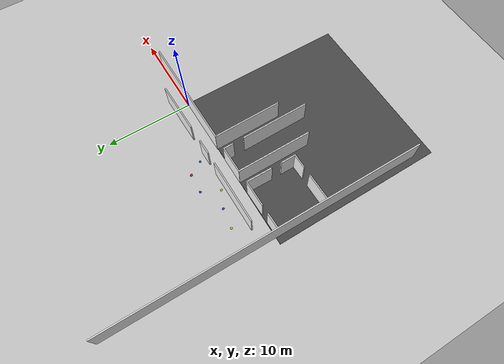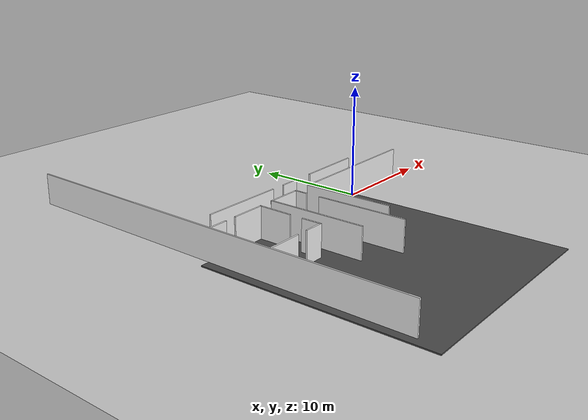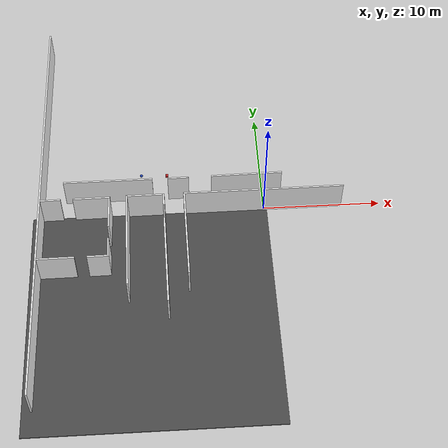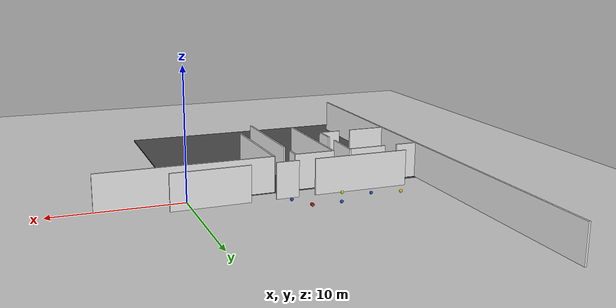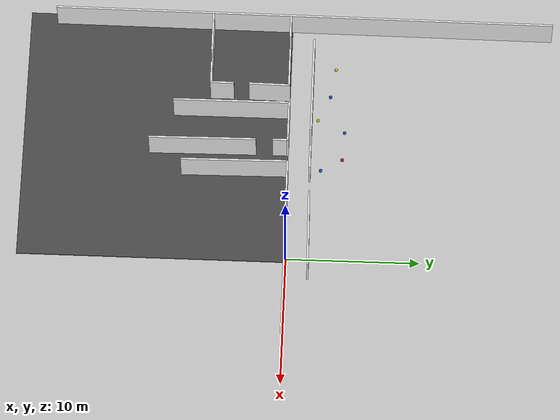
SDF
<sdf version="1.7">
 <world name="default">
  <model name="ground_plane">
   <static>1</static>
   <link name="link">
    <collision name="collision">
     <geometry><plane><normal>0 0 1</normal><size>100 100</size></plane></geometry>
     <surface><friction><ode><mu>100</mu><mu2>50</mu2></ode></friction></surface>
    </collision>
    <visual name="visual">
     <cast_shadows>0</cast_shadows>
     <geometry><plane><normal>0 0 1</normal><size>100 100</size></plane></geometry>
     <material>
      <script><uri>file://media/materials/scripts/gazebo.material</uri><name>Gazebo/Grey</name></script>
     </material>
    </visual>
    <velocity_decay><linear>0</linear><angular>0</angular></velocity_decay>
   </link>
  </model>
  <model name="asphalt_plane">
   <static>1</static>
   <link name="link">
    <collision name="collision"><geometry><box><size>20 20 0.1</size></box></geometry></collision>
    <visual name="visual">
     <cast_shadows>0</cast_shadows>
     <geometry><box><size>20 20 0.1</size></box></geometry>
     <material>
      <script>
       <uri>model://asphalt_plane/materials/scripts</uri>
       <uri>model://asphalt_plane/materials/textures</uri>
       <name>vrc/asphalt</name>
      </script>
     </material>
    </visual>
   </link>
   <pose>-9.73878 -10.1135 0 0 -0 0</pose>
  </model>
  <model name="white_wall_outside_clone_1">
   <link name="link">
    <inertial>
     <mass>1</mass>
     <inertia>
      <ixx>0.166667</ixx>
      <ixy>0</ixy>
      <ixz>0</ixz>
      <iyy>0.166667</iyy>
      <iyz>0</iyz>
      <izz>0.166667</izz>
     </inertia>
    </inertial>
    <visual name="visual">
     <geometry><box><size>37.6355 0.139088 2.78993</size></box></geometry>
     <material>
      <script><name>Gazebo/White</name><uri>file://media/materials/scripts/gazebo.material</uri></script>
      <shader type="vertex"><normal_map>__default__</normal_map></shader>
      <ambient>1 1 1 1</ambient>
      <diffuse>1 1 1 1</diffuse>
      <specular>0 0 0 1</specular>
      <emissive>0 0 0 1</emissive>
     </material>
    </visual>
    <collision name="collision">
     <geometry><box><size>37.6355 0.139088 2.78993</size></box></geometry>
     <surface>
      <friction>
       <ode><mu>1</mu><mu2>1</mu2><fdir1>0 0 0</fdir1><slip1>0</slip1><slip2>0</slip2></ode>
       <torsional>
        <coefficient>1</coefficient>
        <patch_radius>0</patch_radius>
        <surface_radius>0</surface_radius>
        <use_patch_radius>1</use_patch_radius>
        <ode><slip>0</slip></ode>
       </torsional>
      </friction>
      <bounce><restitution_coefficient>0</restitution_coefficient><threshold>1e+06</threshold></bounce>
      <contact>
       <collide_without_contact>0</collide_without_contact>
       <collide_without_contact_bitmask>1</collide_without_contact_bitmask>
       <collide_bitmask>1</collide_bitmask>
       <ode>
        <soft_cfm>0</soft_cfm>
        <soft_erp>0.2</soft_erp>
        <kp>1e+13</kp>
        <kd>1</kd>
        <max_vel>0.01</max_vel>
        <min_depth>0</min_depth>
       </ode>
       <bullet>
        <split_impulse>1</split_impulse>
        <split_impulse_penetration_threshold>-0.01</split_impulse_penetration_threshold>
        <soft_cfm>0</soft_cfm>
        <soft_erp>0.2</soft_erp>
        <kp>1e+13</kp>
        <kd>1</kd>
       </bullet>
      </contact>
     </surface>
    </collision>
   </link>
   <static>1</static>
   <pose>-18.8746 0.750399 1.44009 4e-06 1e-06 1.56558</pose>
  </model>
  <model name="white_wall3_clone_clone_0_clone_clone">
   <link name="link">
    <inertial>
     <mass>1</mass>
     <inertia>
      <ixx>0.166667</ixx>
      <ixy>0</ixy>
      <ixz>0</ixz>
      <iyy>0.166667</iyy>
      <iyz>0</iyz>
      <izz>0.166667</izz>
     </inertia>
    </inertial>
    <visual name="visual">
     <geometry><box><size>1.77743 0.139088 2.78993</size></box></geometry>
     <material>
      <script><name>Gazebo/White</name><uri>file://media/materials/scripts/gazebo.material</uri></script>
      <shader type="vertex"><normal_map>__default__</normal_map></shader>
      <ambient>1 1 1 1</ambient>
      <diffuse>1 1 1 1</diffuse>
      <specular>0 0 0 1</specular>
      <emissive>0 0 0 1</emissive>
     </material>
    </visual>
    <collision name="collision">
     <geometry><box><size>1.77743 0.139088 2.78993</size></box></geometry>
     <surface>
      <friction>
       <ode><mu>1</mu><mu2>1</mu2><fdir1>0 0 0</fdir1><slip1>0</slip1><slip2>0</slip2></ode>
       <torsional>
        <coefficient>1</coefficient>
        <patch_radius>0</patch_radius>
        <surface_radius>0</surface_radius>
        <use_patch_radius>1</use_patch_radius>
        <ode><slip>0</slip></ode>
       </torsional>
      </friction>
      <bounce><restitution_coefficient>0</restitution_coefficient><threshold>1e+06</threshold></bounce>
      <contact>
       <collide_without_contact>0</collide_without_contact>
       <collide_without_contact_bitmask>1</collide_without_contact_bitmask>
       <collide_bitmask>1</collide_bitmask>
       <ode>
        <soft_cfm>0</soft_cfm>
        <soft_erp>0.2</soft_erp>
        <kp>1e+13</kp>
        <kd>1</kd>
        <max_vel>0.01</max_vel>
        <min_depth>0</min_depth>
       </ode>
       <bullet>
        <split_impulse>1</split_impulse>
        <split_impulse_penetration_threshold>-0.01</split_impulse_penetration_threshold>
        <soft_cfm>0</soft_cfm>
        <soft_erp>0.2</soft_erp>
        <kp>1e+13</kp>
        <kd>1</kd>
       </bullet>
      </contact>
     </surface>
    </collision>
   </link>
   <static>1</static>
   <pose>-13.9168 -6.10329 1.43995 -1e-06 4e-06 0.011343</pose>
  </model>
  <model name="white_wall3_clone_clone_0_clone_clone_0">
   <link name="link">
    <inertial>
     <mass>1</mass>
     <inertia>
      <ixx>0.166667</ixx>
      <ixy>0</ixy>
      <ixz>0</ixz>
      <iyy>0.166667</iyy>
      <iyz>0</iyz>
      <izz>0.166667</izz>
     </inertia>
    </inertial>
    <visual name="visual">
     <geometry><box><size>1.77743 0.139088 2.78993</size></box></geometry>
     <material>
      <script><name>Gazebo/White</name><uri>file://media/materials/scripts/gazebo.material</uri></script>
      <shader type="vertex"><normal_map>__default__</normal_map></shader>
      <ambient>1 1 1 1</ambient>
      <diffuse>1 1 1 1</diffuse>
      <specular>0 0 0 1</specular>
      <emissive>0 0 0 1</emissive>
     </material>
    </visual>
    <collision name="collision">
     <geometry><box><size>1.77743 0.139088 2.78993</size></box></geometry>
     <surface>
      <friction>
       <ode><mu>1</mu><mu2>1</mu2><fdir1>0 0 0</fdir1><slip1>0</slip1><slip2>0</slip2></ode>
       <torsional>
        <coefficient>1</coefficient>
        <patch_radius>0</patch_radius>
        <surface_radius>0</surface_radius>
        <use_patch_radius>1</use_patch_radius>
        <ode><slip>0</slip></ode>
       </torsional>
      </friction>
      <bounce><restitution_coefficient>0</restitution_coefficient><threshold>1e+06</threshold></bounce>
      <contact>
       <collide_without_contact>0</collide_without_contact>
       <collide_without_contact_bitmask>1</collide_without_contact_bitmask>
       <collide_bitmask>1</collide_bitmask>
       <ode>
        <soft_cfm>0</soft_cfm>
        <soft_erp>0.2</soft_erp>
        <kp>1e+13</kp>
        <kd>1</kd>
        <max_vel>0.01</max_vel>
        <min_depth>0</min_depth>
       </ode>
       <bullet>
        <split_impulse>1</split_impulse>
        <split_impulse_penetration_threshold>-0.01</split_impulse_penetration_threshold>
        <soft_cfm>0</soft_cfm>
        <soft_erp>0.2</soft_erp>
        <kp>1e+13</kp>
        <kd>1</kd>
       </bullet>
      </contact>
     </surface>
    </collision>
   </link>
   <static>1</static>
   <pose>-13.1027 -5.25978 1.43995 4e-06 1e-06 1.57847</pose>
  </model>
  <model name="white_wall16_clone">
   <link name="link">
    <inertial>
     <mass>1</mass>
     <inertia>
      <ixx>0.166667</ixx>
      <ixy>0</ixy>
      <ixz>0</ixz>
      <iyy>0.166667</iyy>
      <iyz>0</iyz>
      <izz>0.166667</izz>
     </inertia>
    </inertial>
    <visual name="visual">
     <geometry><box><size>3.08239 0.139088 2.78993</size></box></geometry>
     <material>
      <script><name>Gazebo/White</name><uri>file://media/materials/scripts/gazebo.material</uri></script>
      <shader type="vertex"><normal_map>__default__</normal_map></shader>
      <ambient>1 1 1 1</ambient>
      <diffuse>1 1 1 1</diffuse>
      <specular>0 0 0 1</specular>
      <emissive>0 0 0 1</emissive>
     </material>
    </visual>
    <collision name="collision">
     <geometry><box><size>3.08239 0.139088 2.78993</size></box></geometry>
     <surface>
      <friction>
       <ode><mu>1</mu><mu2>1</mu2><fdir1>0 0 0</fdir1><slip1>0</slip1><slip2>0</slip2></ode>
       <torsional>
        <coefficient>1</coefficient>
        <patch_radius>0</patch_radius>
        <surface_radius>0</surface_radius>
        <use_patch_radius>1</use_patch_radius>
        <ode><slip>0</slip></ode>
       </torsional>
      </friction>
      <bounce><restitution_coefficient>0</restitution_coefficient><threshold>1e+06</threshold></bounce>
      <contact>
       <collide_without_contact>0</collide_without_contact>
       <collide_without_contact_bitmask>1</collide_without_contact_bitmask>
       <collide_bitmask>1</collide_bitmask>
       <ode>
        <soft_cfm>0</soft_cfm>
        <soft_erp>0.2</soft_erp>
        <kp>1e+13</kp>
        <kd>1</kd>
        <max_vel>0.01</max_vel>
        <min_depth>0</min_depth>
       </ode>
       <bullet>
        <split_impulse>1</split_impulse>
        <split_impulse_penetration_threshold>-0.01</split_impulse_penetration_threshold>
        <soft_cfm>0</soft_cfm>
        <soft_erp>0.2</soft_erp>
        <kp>1e+13</kp>
        <kd>1</kd>
       </bullet>
      </contact>
     </surface>
    </collision>
   </link>
   <static>1</static>
   <pose>-17.3414 -6.13134 1.43999 1e-06 -4e-06 -3.13575</pose>
  </model>
  <model name="white_wall16_clone_clone">
   <link name="link">
    <inertial>
     <mass>1</mass>
     <inertia>
      <ixx>0.166667</ixx>
      <ixy>0</ixy>
      <ixz>0</ixz>
      <iyy>0.166667</iyy>
      <iyz>0</iyz>
      <izz>0.166667</izz>
     </inertia>
    </inertial>
    <visual name="visual">
     <geometry><box><size>3.08239 0.139088 2.78993</size></box></geometry>
     <material>
      <script><name>Gazebo/White</name><uri>file://media/materials/scripts/gazebo.material</uri></script>
      <shader type="vertex"><normal_map>__default__</normal_map></shader>
      <ambient>1 1 1 1</ambient>
      <diffuse>1 1 1 1</diffuse>
      <specular>0 0 0 1</specular>
      <emissive>0 0 0 1</emissive>
     </material>
    </visual>
    <collision name="collision">
     <geometry><box><size>3.08239 0.139088 2.78993</size></box></geometry>
     <surface>
      <friction>
       <ode><mu>1</mu><mu2>1</mu2><fdir1>0 0 0</fdir1><slip1>0</slip1><slip2>0</slip2></ode>
       <torsional>
        <coefficient>1</coefficient>
        <patch_radius>0</patch_radius>
        <surface_radius>0</surface_radius>
        <use_patch_radius>1</use_patch_radius>
        <ode><slip>0</slip></ode>
       </torsional>
      </friction>
      <bounce><restitution_coefficient>0</restitution_coefficient><threshold>1e+06</threshold></bounce>
      <contact>
       <collide_without_contact>0</collide_without_contact>
       <collide_without_contact_bitmask>1</collide_without_contact_bitmask>
       <collide_bitmask>1</collide_bitmask>
       <ode>
        <soft_cfm>0</soft_cfm>
        <soft_erp>0.2</soft_erp>
        <kp>1e+13</kp>
        <kd>1</kd>
        <max_vel>0.01</max_vel>
        <min_depth>0</min_depth>
       </ode>
       <bullet>
        <split_impulse>1</split_impulse>
        <split_impulse_penetration_threshold>-0.01</split_impulse_penetration_threshold>
        <soft_cfm>0</soft_cfm>
        <soft_erp>0.2</soft_erp>
        <kp>1e+13</kp>
        <kd>1</kd>
       </bullet>
      </contact>
     </surface>
    </collision>
   </link>
   <static>1</static>
   <pose>-13.0778 -1.67577 1.43998 4e-06 1e-06 1.55719</pose>
  </model>
  <model name="white_wall16_clone_clone_0">
   <link name="link">
    <inertial>
     <mass>1</mass>
     <inertia>
      <ixx>0.166667</ixx>
      <ixy>0</ixy>
      <ixz>0</ixz>
      <iyy>0.166667</iyy>
      <iyz>0</iyz>
      <izz>0.166667</izz>
     </inertia>
    </inertial>
    <visual name="visual">
     <geometry><box><size>3.08239 0.139088 2.78993</size></box></geometry>
     <material>
      <script><name>Gazebo/White</name><uri>file://media/materials/scripts/gazebo.material</uri></script>
      <shader type="vertex"><normal_map>__default__</normal_map></shader>
      <ambient>1 1 1 1</ambient>
      <diffuse>1 1 1 1</diffuse>
      <specular>0 0 0 1</specular>
      <emissive>0 0 0 1</emissive>
     </material>
    </visual>
    <collision name="collision">
     <geometry><box><size>3.08239 0.139088 2.78993</size></box></geometry>
     <surface>
      <friction>
       <ode><mu>1</mu><mu2>1</mu2><fdir1>0 0 0</fdir1><slip1>0</slip1><slip2>0</slip2></ode>
       <torsional>
        <coefficient>1</coefficient>
        <patch_radius>0</patch_radius>
        <surface_radius>0</surface_radius>
        <use_patch_radius>1</use_patch_radius>
        <ode><slip>0</slip></ode>
       </torsional>
      </friction>
      <bounce><restitution_coefficient>0</restitution_coefficient><threshold>1e+06</threshold></bounce>
      <contact>
       <collide_without_contact>0</collide_without_contact>
       <collide_without_contact_bitmask>1</collide_without_contact_bitmask>
       <collide_bitmask>1</collide_bitmask>
       <ode>
        <soft_cfm>0</soft_cfm>
        <soft_erp>0.2</soft_erp>
        <kp>1e+13</kp>
        <kd>1</kd>
        <max_vel>0.01</max_vel>
        <min_depth>0</min_depth>
       </ode>
       <bullet>
        <split_impulse>1</split_impulse>
        <split_impulse_penetration_threshold>-0.01</split_impulse_penetration_threshold>
        <soft_cfm>0</soft_cfm>
        <soft_erp>0.2</soft_erp>
        <kp>1e+13</kp>
        <kd>1</kd>
       </bullet>
      </contact>
     </surface>
    </collision>
   </link>
   <static>1</static>
   <pose>-14.5522 -0.222761 1.43999 1e-06 -4e-06 -3.13575</pose>
  </model>
  <model name="white_wall3_clone_clone_0_clone_clone_clone">
   <link name="link">
    <inertial>
     <mass>1</mass>
     <inertia>
      <ixx>0.166667</ixx>
      <ixy>0</ixy>
      <ixz>0</ixz>
      <iyy>0.166667</iyy>
      <iyz>0</iyz>
      <izz>0.166667</izz>
     </inertia>
    </inertial>
    <visual name="visual">
     <geometry><box><size>1.77743 0.139088 2.78993</size></box></geometry>
     <material>
      <script><name>Gazebo/White</name><uri>file://media/materials/scripts/gazebo.material</uri></script>
      <shader type="vertex"><normal_map>__default__</normal_map></shader>
      <ambient>1 1 1 1</ambient>
      <diffuse>1 1 1 1</diffuse>
      <specular>0 0 0 1</specular>
      <emissive>0 0 0 1</emissive>
     </material>
    </visual>
    <collision name="collision">
     <geometry><box><size>1.77743 0.139088 2.78993</size></box></geometry>
     <surface>
      <friction>
       <ode><mu>1</mu><mu2>1</mu2><fdir1>0 0 0</fdir1><slip1>0</slip1><slip2>0</slip2></ode>
       <torsional>
        <coefficient>1</coefficient>
        <patch_radius>0</patch_radius>
        <surface_radius>0</surface_radius>
        <use_patch_radius>1</use_patch_radius>
        <ode><slip>0</slip></ode>
       </torsional>
      </friction>
      <bounce><restitution_coefficient>0</restitution_coefficient><threshold>1e+06</threshold></bounce>
      <contact>
       <collide_without_contact>0</collide_without_contact>
       <collide_without_contact_bitmask>1</collide_without_contact_bitmask>
       <collide_bitmask>1</collide_bitmask>
       <ode>
        <soft_cfm>0</soft_cfm>
        <soft_erp>0.2</soft_erp>
        <kp>1e+13</kp>
        <kd>1</kd>
        <max_vel>0.01</max_vel>
        <min_depth>0</min_depth>
       </ode>
       <bullet>
        <split_impulse>1</split_impulse>
        <split_impulse_penetration_threshold>-0.01</split_impulse_penetration_threshold>
        <soft_cfm>0</soft_cfm>
        <soft_erp>0.2</soft_erp>
        <kp>1e+13</kp>
        <kd>1</kd>
       </bullet>
      </contact>
     </surface>
    </collision>
   </link>
   <static>1</static>
   <pose>-17.9987 -0.256602 1.43995 -1e-06 4e-06 0.011343</pose>
  </model>
  <model name="white_wall1_clone_0">
   <link name="link">
    <inertial>
     <mass>1</mass>
     <inertia>
      <ixx>0.166667</ixx>
      <ixy>0</ixy>
      <ixz>0</ixz>
      <iyy>0.166667</iyy>
      <iyz>0</iyz>
      <izz>0.166667</izz>
     </inertia>
    </inertial>
    <visual name="visual">
     <geometry><box><size>7.516 0.139088 2.78993</size></box></geometry>
     <material>
      <script><name>Gazebo/White</name><uri>file://media/materials/scripts/gazebo.material</uri></script>
      <shader type="vertex"><normal_map>__default__</normal_map></shader>
      <ambient>1 1 1 1</ambient>
      <diffuse>1 1 1 1</diffuse>
      <specular>0 0 0 1</specular>
      <emissive>0 0 0 1</emissive>
     </material>
    </visual>
    <collision name="collision">
     <geometry><box><size>7.516 0.139088 2.78993</size></box></geometry>
     <surface>
      <friction>
       <ode><mu>1</mu><mu2>1</mu2><fdir1>0 0 0</fdir1><slip1>0</slip1><slip2>0</slip2></ode>
       <torsional>
        <coefficient>1</coefficient>
        <patch_radius>0</patch_radius>
        <surface_radius>0</surface_radius>
        <use_patch_radius>1</use_patch_radius>
        <ode><slip>0</slip></ode>
       </torsional>
      </friction>
      <bounce><restitution_coefficient>0</restitution_coefficient><threshold>1e+06</threshold></bounce>
      <contact>
       <collide_without_contact>0</collide_without_contact>
       <collide_without_contact_bitmask>1</collide_without_contact_bitmask>
       <collide_bitmask>1</collide_bitmask>
       <ode>
        <soft_cfm>0</soft_cfm>
        <soft_erp>0.2</soft_erp>
        <kp>1e+13</kp>
        <kd>1</kd>
        <max_vel>0.01</max_vel>
        <min_depth>0</min_depth>
       </ode>
       <bullet>
        <split_impulse>1</split_impulse>
        <split_impulse_penetration_threshold>-0.01</split_impulse_penetration_threshold>
        <soft_cfm>0</soft_cfm>
        <soft_erp>0.2</soft_erp>
        <kp>1e+13</kp>
        <kd>1</kd>
       </bullet>
      </contact>
     </surface>
    </collision>
   </link>
   <static>1</static>
   <pose>-13.1864 1.55896 1.43996 -1e-06 4e-06 -1.6e-05</pose>
  </model>
  <model name="white_wall3_clone_clone_0_clone_clone_clone_0">
   <link name="link">
    <inertial>
     <mass>1</mass>
     <inertia>
      <ixx>0.166667</ixx>
      <ixy>0</ixy>
      <ixz>0</ixz>
      <iyy>0.166667</iyy>
      <iyz>0</iyz>
      <izz>0.166667</izz>
     </inertia>
    </inertial>
    <visual name="visual">
     <geometry><box><size>1.77743 0.139088 2.78993</size></box></geometry>
     <material>
      <script><name>Gazebo/White</name><uri>file://media/materials/scripts/gazebo.material</uri></script>
      <shader type="vertex"><normal_map>__default__</normal_map></shader>
      <ambient>1 1 1 1</ambient>
      <diffuse>1 1 1 1</diffuse>
      <specular>0 0 0 1</specular>
      <emissive>0 0 0 1</emissive>
     </material>
    </visual>
    <collision name="collision">
     <geometry><box><size>1.77743 0.139088 2.78993</size></box></geometry>
     <surface>
      <friction>
       <ode><mu>1</mu><mu2>1</mu2><fdir1>0 0 0</fdir1><slip1>0</slip1><slip2>0</slip2></ode>
       <torsional>
        <coefficient>1</coefficient>
        <patch_radius>0</patch_radius>
        <surface_radius>0</surface_radius>
        <use_patch_radius>1</use_patch_radius>
        <ode><slip>0</slip></ode>
       </torsional>
      </friction>
      <bounce><restitution_coefficient>0</restitution_coefficient><threshold>1e+06</threshold></bounce>
      <contact>
       <collide_without_contact>0</collide_without_contact>
       <collide_without_contact_bitmask>1</collide_without_contact_bitmask>
       <collide_bitmask>1</collide_bitmask>
       <ode>
        <soft_cfm>0</soft_cfm>
        <soft_erp>0.2</soft_erp>
        <kp>1e+13</kp>
        <kd>1</kd>
        <max_vel>0.01</max_vel>
        <min_depth>0</min_depth>
       </ode>
       <bullet>
        <split_impulse>1</split_impulse>
        <split_impulse_penetration_threshold>-0.01</split_impulse_penetration_threshold>
        <soft_cfm>0</soft_cfm>
        <soft_erp>0.2</soft_erp>
        <kp>1e+13</kp>
        <kd>1</kd>
       </bullet>
      </contact>
     </surface>
    </collision>
   </link>
   <static>1</static>
   <pose>-7.23801 1.56339 1.43995 -1e-06 4e-06 0.011343</pose>
  </model>
  <model name="white_wall2_clone_clone_clone_clone_clone_clone">
   <link name="link">
    <inertial>
     <mass>1</mass>
     <inertia>
      <ixx>0.166667</ixx>
      <ixy>0</ixy>
      <ixz>0</ixz>
      <iyy>0.166667</iyy>
      <iyz>0</iyz>
      <izz>0.166667</izz>
     </inertia>
    </inertial>
    <visual name="visual">
     <geometry><box><size>3.22688 0.139088 2.78993</size></box></geometry>
     <material>
      <script><name>Gazebo/White</name><uri>file://media/materials/scripts/gazebo.material</uri></script>
      <shader type="vertex"><normal_map>__default__</normal_map></shader>
      <ambient>1 1 1 1</ambient>
      <diffuse>1 1 1 1</diffuse>
      <specular>0 0 0 1</specular>
      <emissive>0 0 0 1</emissive>
     </material>
    </visual>
    <collision name="collision">
     <geometry><box><size>3.22688 0.139088 2.78993</size></box></geometry>
     <surface>
      <friction>
       <ode><mu>1</mu><mu2>1</mu2><fdir1>0 0 0</fdir1><slip1>0</slip1><slip2>0</slip2></ode>
       <torsional>
        <coefficient>1</coefficient>
        <patch_radius>0</patch_radius>
        <surface_radius>0</surface_radius>
        <use_patch_radius>1</use_patch_radius>
        <ode><slip>0</slip></ode>
       </torsional>
      </friction>
      <bounce><restitution_coefficient>0</restitution_coefficient><threshold>1e+06</threshold></bounce>
      <contact>
       <collide_without_contact>0</collide_without_contact>
       <collide_without_contact_bitmask>1</collide_without_contact_bitmask>
       <collide_bitmask>1</collide_bitmask>
       <ode>
        <soft_cfm>0</soft_cfm>
        <soft_erp>0.2</soft_erp>
        <kp>1e+13</kp>
        <kd>1</kd>
        <max_vel>0.01</max_vel>
        <min_depth>0</min_depth>
       </ode>
       <bullet>
        <split_impulse>1</split_impulse>
        <split_impulse_penetration_threshold>-0.01</split_impulse_penetration_threshold>
        <soft_cfm>0</soft_cfm>
        <soft_erp>0.2</soft_erp>
        <kp>1e+13</kp>
        <kd>1</kd>
       </bullet>
      </contact>
     </surface>
    </collision>
   </link>
   <static>1</static>
   <pose>-10.0611 -0.145428 1.43995 -1e-06 4e-06 0.004652</pose>
  </model>
  <model name="white_wall3_clone_clone_0_clone_clone_0_clone_clone">
   <link name="link">
    <inertial>
     <mass>1</mass>
     <inertia>
      <ixx>0.166667</ixx>
      <ixy>0</ixy>
      <ixz>0</ixz>
      <iyy>0.166667</iyy>
      <iyz>0</iyz>
      <izz>0.166667</izz>
     </inertia>
    </inertial>
    <visual name="visual">
     <geometry><box><size>1.18951 0.139088 2.78993</size></box></geometry>
     <material>
      <script><name>Gazebo/White</name><uri>file://media/materials/scripts/gazebo.material</uri></script>
      <shader type="vertex"><normal_map>__default__</normal_map></shader>
      <ambient>1 1 1 1</ambient>
      <diffuse>1 1 1 1</diffuse>
      <specular>0 0 0 1</specular>
      <emissive>0 0 0 1</emissive>
     </material>
    </visual>
    <collision name="collision">
     <geometry><box><size>1.18951 0.139088 2.78993</size></box></geometry>
     <surface>
      <friction>
       <ode><mu>1</mu><mu2>1</mu2><fdir1>0 0 0</fdir1><slip1>0</slip1><slip2>0</slip2></ode>
       <torsional>
        <coefficient>1</coefficient>
        <patch_radius>0</patch_radius>
        <surface_radius>0</surface_radius>
        <use_patch_radius>1</use_patch_radius>
        <ode><slip>0</slip></ode>
       </torsional>
      </friction>
      <bounce><restitution_coefficient>0</restitution_coefficient><threshold>1e+06</threshold></bounce>
      <contact>
       <collide_without_contact>0</collide_without_contact>
       <collide_without_contact_bitmask>1</collide_without_contact_bitmask>
       <collide_bitmask>1</collide_bitmask>
       <ode>
        <soft_cfm>0</soft_cfm>
        <soft_erp>0.2</soft_erp>
        <kp>1e+13</kp>
        <kd>1</kd>
        <max_vel>0.01</max_vel>
        <min_depth>0</min_depth>
       </ode>
       <bullet>
        <split_impulse>1</split_impulse>
        <split_impulse_penetration_threshold>-0.01</split_impulse_penetration_threshold>
        <soft_cfm>0</soft_cfm>
        <soft_erp>0.2</soft_erp>
        <kp>1e+13</kp>
        <kd>1</kd>
       </bullet>
      </contact>
     </surface>
    </collision>
   </link>
   <static>1</static>
   <pose>-8.51624 -0.669009 1.43995 4e-06 1e-06 1.57847</pose>
  </model>
  <model name="white_wall20">
   <link name="link">
    <inertial>
     <mass>1</mass>
     <inertia>
      <ixx>0.166667</ixx>
      <ixy>0</ixy>
      <ixz>0</ixz>
      <iyy>0.166667</iyy>
      <iyz>0</iyz>
      <izz>0.166667</izz>
     </inertia>
    </inertial>
    <visual name="visual">
     <geometry><box><size>8.05225 0.139088 2.78993</size></box></geometry>
     <material>
      <script><name>Gazebo/White</name><uri>file://media/materials/scripts/gazebo.material</uri></script>
      <shader type="vertex"><normal_map>__default__</normal_map></shader>
      <ambient>1 1 1 1</ambient>
      <diffuse>1 1 1 1</diffuse>
      <specular>0 0 0 1</specular>
      <emissive>0 0 0 1</emissive>
     </material>
    </visual>
    <collision name="collision">
     <geometry><box><size>8.05225 0.139088 2.78993</size></box></geometry>
     <surface>
      <friction>
       <ode><mu>1</mu><mu2>1</mu2><fdir1>0 0 0</fdir1><slip1>0</slip1><slip2>0</slip2></ode>
       <torsional>
        <coefficient>1</coefficient>
        <patch_radius>0</patch_radius>
        <surface_radius>0</surface_radius>
        <use_patch_radius>1</use_patch_radius>
        <ode><slip>0</slip></ode>
       </torsional>
      </friction>
      <bounce><restitution_coefficient>0</restitution_coefficient><threshold>1e+06</threshold></bounce>
      <contact>
       <collide_without_contact>0</collide_without_contact>
       <collide_without_contact_bitmask>1</collide_without_contact_bitmask>
       <collide_bitmask>1</collide_bitmask>
       <ode>
        <soft_cfm>0</soft_cfm>
        <soft_erp>0.2</soft_erp>
        <kp>1e+13</kp>
        <kd>1</kd>
        <max_vel>0.01</max_vel>
        <min_depth>0</min_depth>
       </ode>
       <bullet>
        <split_impulse>1</split_impulse>
        <split_impulse_penetration_threshold>-0.01</split_impulse_penetration_threshold>
        <soft_cfm>0</soft_cfm>
        <soft_erp>0.2</soft_erp>
        <kp>1e+13</kp>
        <kd>1</kd>
       </bullet>
      </contact>
     </surface>
    </collision>
   </link>
   <static>1</static>
   <pose>-8.45525 -6.55408 1.43995 4e-06 1e-06 1.58267</pose>
  </model>
  <model name="white_wall6_clone_clone_clone_0_clone">
   <link name="link">
    <inertial>
     <mass>1</mass>
     <inertia>
      <ixx>0.166667</ixx>
      <ixy>0</ixy>
      <ixz>0</ixz>
      <iyy>0.166667</iyy>
      <iyz>0</iyz>
      <izz>0.166667</izz>
     </inertia>
    </inertial>
    <visual name="visual">
     <geometry><box><size>6.01508 0.139088 2.78993</size></box></geometry>
     <material>
      <script><name>Gazebo/White</name><uri>file://media/materials/scripts/gazebo.material</uri></script>
      <shader type="vertex"><normal_map>__default__</normal_map></shader>
      <ambient>1 1 1 1</ambient>
      <diffuse>1 1 1 1</diffuse>
      <specular>0 0 0 1</specular>
      <emissive>0 0 0 1</emissive>
     </material>
    </visual>
    <collision name="collision">
     <geometry><box><size>6.01508 0.139088 2.78993</size></box></geometry>
     <surface>
      <friction>
       <ode><mu>1</mu><mu2>1</mu2><fdir1>0 0 0</fdir1><slip1>0</slip1><slip2>0</slip2></ode>
       <torsional>
        <coefficient>1</coefficient>
        <patch_radius>0</patch_radius>
        <surface_radius>0</surface_radius>
        <use_patch_radius>1</use_patch_radius>
        <ode><slip>0</slip></ode>
       </torsional>
      </friction>
      <bounce><restitution_coefficient>0</restitution_coefficient><threshold>1e+06</threshold></bounce>
      <contact>
       <collide_without_contact>0</collide_without_contact>
       <collide_without_contact_bitmask>1</collide_without_contact_bitmask>
       <collide_bitmask>1</collide_bitmask>
       <ode>
        <soft_cfm>0</soft_cfm>
        <soft_erp>0.2</soft_erp>
        <kp>1e+13</kp>
        <kd>1</kd>
        <max_vel>0.01</max_vel>
        <min_depth>0</min_depth>
       </ode>
       <bullet>
        <split_impulse>1</split_impulse>
        <split_impulse_penetration_threshold>-0.01</split_impulse_penetration_threshold>
        <soft_cfm>0</soft_cfm>
        <soft_erp>0.2</soft_erp>
        <kp>1e+13</kp>
        <kd>1</kd>
       </bullet>
      </contact>
     </surface>
    </collision>
   </link>
   <static>1</static>
   <pose>-1.41153 1.6483 1.43998 1e-06 -4e-06 -3.1252</pose>
  </model>
  <model name="white_wall20_clone">
   <link name="link">
    <inertial>
     <mass>1</mass>
     <inertia>
      <ixx>0.166667</ixx>
      <ixy>0</ixy>
      <ixz>0</ixz>
      <iyy>0.166667</iyy>
      <iyz>0</iyz>
      <izz>0.166667</izz>
     </inertia>
    </inertial>
    <visual name="visual">
     <geometry><box><size>8.05225 0.139088 2.78993</size></box></geometry>
     <material>
      <script><name>Gazebo/White</name><uri>file://media/materials/scripts/gazebo.material</uri></script>
      <shader type="vertex"><normal_map>__default__</normal_map></shader>
      <ambient>1 1 1 1</ambient>
      <diffuse>1 1 1 1</diffuse>
      <specular>0 0 0 1</specular>
      <emissive>0 0 0 1</emissive>
     </material>
    </visual>
    <collision name="collision">
     <geometry><box><size>8.05225 0.139088 2.78993</size></box></geometry>
     <surface>
      <friction>
       <ode><mu>1</mu><mu2>1</mu2><fdir1>0 0 0</fdir1><slip1>0</slip1><slip2>0</slip2></ode>
       <torsional>
        <coefficient>1</coefficient>
        <patch_radius>0</patch_radius>
        <surface_radius>0</surface_radius>
        <use_patch_radius>1</use_patch_radius>
        <ode><slip>0</slip></ode>
       </torsional>
      </friction>
      <bounce><restitution_coefficient>0</restitution_coefficient><threshold>1e+06</threshold></bounce>
      <contact>
       <collide_without_contact>0</collide_without_contact>
       <collide_without_contact_bitmask>1</collide_without_contact_bitmask>
       <collide_bitmask>1</collide_bitmask>
       <ode>
        <soft_cfm>0</soft_cfm>
        <soft_erp>0.2</soft_erp>
        <kp>1e+13</kp>
        <kd>1</kd>
        <max_vel>0.01</max_vel>
        <min_depth>0</min_depth>
       </ode>
       <bullet>
        <split_impulse>1</split_impulse>
        <split_impulse_penetration_threshold>-0.01</split_impulse_penetration_threshold>
        <soft_cfm>0</soft_cfm>
        <soft_erp>0.2</soft_erp>
        <kp>1e+13</kp>
        <kd>1</kd>
       </bullet>
      </contact>
     </surface>
    </collision>
   </link>
   <static>1</static>
   <pose>-6.73509 -4.06271 1.43995 4e-06 1e-06 1.58267</pose>
  </model>
  <model name="white_wall23">
   <link name="link">
    <inertial>
     <mass>1</mass>
     <inertia>
      <ixx>0.166667</ixx>
      <ixy>0</ixy>
      <ixz>0</ixz>
      <iyy>0.166667</iyy>
      <iyz>0</iyz>
      <izz>0.166667</izz>
     </inertia>
    </inertial>
    <visual name="visual">
     <geometry><box><size>13.4701 0.139088 2.78993</size></box></geometry>
     <material>
      <script><name>Gazebo/White</name><uri>file://media/materials/scripts/gazebo.material</uri></script>
      <shader type="vertex"><normal_map>__default__</normal_map></shader>
      <ambient>1 1 1 1</ambient>
      <diffuse>1 1 1 1</diffuse>
      <specular>0 0 0 1</specular>
      <emissive>0 0 0 1</emissive>
     </material>
    </visual>
    <collision name="collision">
     <geometry><box><size>13.4701 0.139088 2.78993</size></box></geometry>
     <surface>
      <friction>
       <ode><mu>1</mu><mu2>1</mu2><fdir1>0 0 0</fdir1><slip1>0</slip1><slip2>0</slip2></ode>
       <torsional>
        <coefficient>1</coefficient>
        <patch_radius>0</patch_radius>
        <surface_radius>0</surface_radius>
        <use_patch_radius>1</use_patch_radius>
        <ode><slip>0</slip></ode>
       </torsional>
      </friction>
      <bounce><restitution_coefficient>0</restitution_coefficient><threshold>1e+06</threshold></bounce>
      <contact>
       <collide_without_contact>0</collide_without_contact>
       <collide_without_contact_bitmask>1</collide_without_contact_bitmask>
       <collide_bitmask>1</collide_bitmask>
       <ode>
        <soft_cfm>0</soft_cfm>
        <soft_erp>0.2</soft_erp>
        <kp>1e+13</kp>
        <kd>1</kd>
        <max_vel>0.01</max_vel>
        <min_depth>0</min_depth>
       </ode>
       <bullet>
        <split_impulse>1</split_impulse>
        <split_impulse_penetration_threshold>-0.01</split_impulse_penetration_threshold>
        <soft_cfm>0</soft_cfm>
        <soft_erp>0.2</soft_erp>
        <kp>1e+13</kp>
        <kd>1</kd>
       </bullet>
      </contact>
     </surface>
    </collision>
   </link>
   <static>1</static>
   <pose>-0.069027 -0.072082 1.43998 1e-06 -4e-06 -3.13691</pose>
  </model>
  <model name="white_wall29">
   <link name="link">
    <inertial>
     <mass>1</mass>
     <inertia>
      <ixx>0.166667</ixx>
      <ixy>0</ixy>
      <ixz>0</ixz>
      <iyy>0.166667</iyy>
      <iyz>0</iyz>
      <izz>0.166667</izz>
     </inertia>
    </inertial>
    <visual name="visual">
     <geometry><box><size>8.77073 0.139088 2.78993</size></box></geometry>
     <material>
      <script><name>Gazebo/White</name><uri>file://media/materials/scripts/gazebo.material</uri></script>
      <shader type="vertex"><normal_map>__default__</normal_map></shader>
      <ambient>1 1 1 1</ambient>
      <diffuse>1 1 1 1</diffuse>
      <specular>0 0 0 1</specular>
      <emissive>0 0 0 1</emissive>
     </material>
    </visual>
    <collision name="collision">
     <geometry><box><size>8.77073 0.139088 2.78993</size></box></geometry>
     <surface>
      <friction>
       <ode><mu>1</mu><mu2>1</mu2><fdir1>0 0 0</fdir1><slip1>0</slip1><slip2>0</slip2></ode>
       <torsional>
        <coefficient>1</coefficient>
        <patch_radius>0</patch_radius>
        <surface_radius>0</surface_radius>
        <use_patch_radius>1</use_patch_radius>
        <ode><slip>0</slip></ode>
       </torsional>
      </friction>
      <bounce><restitution_coefficient>0</restitution_coefficient><threshold>1e+06</threshold></bounce>
      <contact>
       <collide_without_contact>0</collide_without_contact>
       <collide_without_contact_bitmask>1</collide_without_contact_bitmask>
       <collide_bitmask>1</collide_bitmask>
       <ode>
        <soft_cfm>0</soft_cfm>
        <soft_erp>0.2</soft_erp>
        <kp>1e+13</kp>
        <kd>1</kd>
        <max_vel>0.01</max_vel>
        <min_depth>0</min_depth>
       </ode>
       <bullet>
        <split_impulse>1</split_impulse>
        <split_impulse_penetration_threshold>-0.01</split_impulse_penetration_threshold>
        <soft_cfm>0</soft_cfm>
        <soft_erp>0.2</soft_erp>
        <kp>1e+13</kp>
        <kd>1</kd>
       </bullet>
      </contact>
     </surface>
    </collision>
   </link>
   <static>1</static>
   <pose>-11.5983 -4.4805 1.43998 4e-06 1e-06 1.57381</pose>
  </model>
  <model name="unit_sphere_blue_small_clone">
   <link name="link">
    <inertial>
     <mass>1</mass>
     <inertia><ixx>0.1</ixx><ixy>0</ixy><ixz>0</ixz><iyy>0.1</iyy><iyz>0</iyz><izz>0.1</izz></inertia>
    </inertial>
    <pose>0 0 -0.418168 0 -0 0</pose>
    <visual name="visual">
     <geometry><sphere><radius>0.125</radius></sphere></geometry>
     <material>
      <script><name>Gazebo/Blue</name><uri>file://media/materials/scripts/gazebo.material</uri></script>
      <shader type="vertex"><normal_map>__default__</normal_map></shader>
      <ambient>0 0 1 1</ambient>
      <diffuse>0 0 1 1</diffuse>
      <specular>0.1 0.1 0.1 1</specular>
      <emissive>0 0 0 1</emissive>
     </material>
    </visual>
    <collision name="collision">
     <geometry><sphere><radius>0.125</radius></sphere></geometry>
     <surface>
      <friction>
       <ode><mu>1</mu><mu2>1</mu2><fdir1>0 0 0</fdir1><slip1>0</slip1><slip2>0</slip2></ode>
       <torsional>
        <coefficient>1</coefficient>
        <patch_radius>0</patch_radius>
        <surface_radius>0</surface_radius>
        <use_patch_radius>1</use_patch_radius>
        <ode><slip>0</slip></ode>
       </torsional>
      </friction>
      <bounce><restitution_coefficient>0</restitution_coefficient><threshold>1e+06</threshold></bounce>
      <contact>
       <collide_without_contact>0</collide_without_contact>
       <collide_without_contact_bitmask>1</collide_without_contact_bitmask>
       <collide_bitmask>1</collide_bitmask>
       <ode>
        <soft_cfm>0</soft_cfm>
        <soft_erp>0.2</soft_erp>
        <kp>1e+13</kp>
        <kd>1</kd>
        <max_vel>0.01</max_vel>
        <min_depth>0</min_depth>
       </ode>
       <bullet>
        <split_impulse>1</split_impulse>
        <split_impulse_penetration_threshold>-0.01</split_impulse_penetration_threshold>
        <soft_cfm>0</soft_cfm>
        <soft_erp>0.2</soft_erp>
        <kp>1e+13</kp>
        <kd>1</kd>
       </bullet>
      </contact>
     </surface>
    </collision>
   </link>
   <static>0</static>
   <pose>-13.3931 2.93726 0.593168 0 -0 0</pose>
  </model>
  <model name="unit_sphere_blue_small_clone_2">
   <link name="link">
    <inertial>
     <mass>1</mass>
     <inertia><ixx>0.1</ixx><ixy>0</ixy><ixz>0</ixz><iyy>0.1</iyy><iyz>0</iyz><izz>0.1</izz></inertia>
    </inertial>
    <pose>0 0 -0.418168 0 -0 0</pose>
    <visual name="visual">
     <geometry><sphere><radius>0.125</radius></sphere></geometry>
     <material>
      <script><name>Gazebo/Blue</name><uri>file://media/materials/scripts/gazebo.material</uri></script>
      <shader type="vertex"><normal_map>__default__</normal_map></shader>
      <ambient>0 0 1 1</ambient>
      <diffuse>0 0 1 1</diffuse>
      <specular>0.1 0.1 0.1 1</specular>
      <emissive>0 0 0 1</emissive>
     </material>
    </visual>
    <collision name="collision">
     <geometry><sphere><radius>0.125</radius></sphere></geometry>
     <surface>
      <friction>
       <ode><mu>1</mu><mu2>1</mu2><fdir1>0 0 0</fdir1><slip1>0</slip1><slip2>0</slip2></ode>
       <torsional>
        <coefficient>1</coefficient>
        <patch_radius>0</patch_radius>
        <surface_radius>0</surface_radius>
        <use_patch_radius>1</use_patch_radius>
        <ode><slip>0</slip></ode>
       </torsional>
      </friction>
      <bounce><restitution_coefficient>0</restitution_coefficient><threshold>1e+06</threshold></bounce>
      <contact>
       <collide_without_contact>0</collide_without_contact>
       <collide_without_contact_bitmask>1</collide_without_contact_bitmask>
       <collide_bitmask>1</collide_bitmask>
       <ode>
        <soft_cfm>0</soft_cfm>
        <soft_erp>0.2</soft_erp>
        <kp>1e+13</kp>
        <kd>1</kd>
        <max_vel>0.01</max_vel>
        <min_depth>0</min_depth>
       </ode>
       <bullet>
        <split_impulse>1</split_impulse>
        <split_impulse_penetration_threshold>-0.01</split_impulse_penetration_threshold>
        <soft_cfm>0</soft_cfm>
        <soft_erp>0.2</soft_erp>
        <kp>1e+13</kp>
        <kd>1</kd>
       </bullet>
      </contact>
     </surface>
    </collision>
   </link>
   <static>0</static>
   <pose>-10.451 4.0936 0.593168 0 -0 0</pose>
  </model>
  <model name="unit_sphere_blue_small_clone_4">
   <link name="link">
    <inertial>
     <mass>1</mass>
     <inertia><ixx>0.1</ixx><ixy>0</ixy><ixz>0</ixz><iyy>0.1</iyy><iyz>0</iyz><izz>0.1</izz></inertia>
    </inertial>
    <pose>0 0 -0.418168 0 -0 0</pose>
    <visual name="visual">
     <geometry><sphere><radius>0.125</radius></sphere></geometry>
     <material>
      <script><name>Gazebo/Blue</name><uri>file://media/materials/scripts/gazebo.material</uri></script>
      <shader type="vertex"><normal_map>__default__</normal_map></shader>
      <ambient>0 0 1 1</ambient>
      <diffuse>0 0 1 1</diffuse>
      <specular>0.1 0.1 0.1 1</specular>
      <emissive>0 0 0 1</emissive>
     </material>
    </visual>
    <collision name="collision">
     <geometry><sphere><radius>0.125</radius></sphere></geometry>
     <surface>
      <friction>
       <ode><mu>1</mu><mu2>1</mu2><fdir1>0 0 0</fdir1><slip1>0</slip1><slip2>0</slip2></ode>
       <torsional>
        <coefficient>1</coefficient>
        <patch_radius>0</patch_radius>
        <surface_radius>0</surface_radius>
        <use_patch_radius>1</use_patch_radius>
        <ode><slip>0</slip></ode>
       </torsional>
      </friction>
      <bounce><restitution_coefficient>0</restitution_coefficient><threshold>1e+06</threshold></bounce>
      <contact>
       <collide_without_contact>0</collide_without_contact>
       <collide_without_contact_bitmask>1</collide_without_contact_bitmask>
       <collide_bitmask>1</collide_bitmask>
       <ode>
        <soft_cfm>0</soft_cfm>
        <soft_erp>0.2</soft_erp>
        <kp>1e+13</kp>
        <kd>1</kd>
        <max_vel>0.01</max_vel>
        <min_depth>0</min_depth>
       </ode>
       <bullet>
        <split_impulse>1</split_impulse>
        <split_impulse_penetration_threshold>-0.01</split_impulse_penetration_threshold>
        <soft_cfm>0</soft_cfm>
        <soft_erp>0.2</soft_erp>
        <kp>1e+13</kp>
        <kd>1</kd>
       </bullet>
      </contact>
     </surface>
    </collision>
   </link>
   <static>0</static>
   <pose>-7.25929 2.38779 0.593168 0 -0 0</pose>
  </model>
  <model name="unit_cylinder_red_25">
   <link name="link">
    <inertial>
     <mass>1</mass>
     <inertia><ixx>0.145833</ixx><ixy>0</ixy><ixz>0</ixz><iyy>0.145833</iyy><iyz>0</iyz><izz>0.125</izz></inertia>
    </inertial>
    <pose>0 -0.384385 0 0 -0 0</pose>
    <visual name="visual">
     <geometry><cylinder><radius>0.12</radius><length>0.25</length></cylinder></geometry>
     <material>
      <script><name>Gazebo/Red</name><uri>file://media/materials/scripts/gazebo.material</uri></script>
      <shader type="vertex"><normal_map>__default__</normal_map></shader>
      <ambient>1 0 0 1</ambient>
      <diffuse>1 0 0 1</diffuse>
      <specular>0.1 0.1 0.1 1</specular>
      <emissive>0 0 0 1</emissive>
     </material>
    </visual>
    <collision name="collision">
     <geometry><cylinder><radius>0.12</radius><length>0.25</length></cylinder></geometry>
     <surface>
      <friction>
       <ode><mu>1</mu><mu2>1</mu2><fdir1>0 0 0</fdir1><slip1>0</slip1><slip2>0</slip2></ode>
       <torsional>
        <coefficient>1</coefficient>
        <patch_radius>0</patch_radius>
        <surface_radius>0</surface_radius>
        <use_patch_radius>1</use_patch_radius>
        <ode><slip>0</slip></ode>
       </torsional>
      </friction>
      <bounce><restitution_coefficient>0</restitution_coefficient><threshold>1e+06</threshold></bounce>
      <contact>
       <collide_without_contact>0</collide_without_contact>
       <collide_without_contact_bitmask>1</collide_without_contact_bitmask>
       <collide_bitmask>1</collide_bitmask>
       <ode>
        <soft_cfm>0</soft_cfm>
        <soft_erp>0.2</soft_erp>
        <kp>1e+13</kp>
        <kd>1</kd>
        <max_vel>0.01</max_vel>
        <min_depth>0</min_depth>
       </ode>
       <bullet>
        <split_impulse>1</split_impulse>
        <split_impulse_penetration_threshold>-0.01</split_impulse_penetration_threshold>
        <soft_cfm>0</soft_cfm>
        <soft_erp>0.2</soft_erp>
        <kp>1e+13</kp>
        <kd>1</kd>
       </bullet>
      </contact>
     </surface>
    </collision>
   </link>
   <static>0</static>
   <pose>-8.20967 3.97508 0.554385 1.5708 -0 0</pose>
  </model>
  <model name="unit_sphere_yellow_25">
   <link name="link">
    <inertial>
     <mass>1</mass>
     <inertia><ixx>0.1</ixx><ixy>0</ixy><ixz>0</ixz><iyy>0.1</iyy><iyz>0</iyz><izz>0.1</izz></inertia>
    </inertial>
    <pose>0 0 -0.37506 0 -0 0</pose>
    <visual name="visual">
     <geometry><sphere><radius>0.125</radius></sphere></geometry>
     <material>
      <script><name>Gazebo/Yellow</name><uri>file://media/materials/scripts/gazebo.material</uri></script>
      <shader type="vertex"><normal_map>__default__</normal_map></shader>
      <ambient>1 1 0 1</ambient>
      <diffuse>1 1 0 1</diffuse>
      <emissive>0 0 0 1</emissive>
     </material>
    </visual>
    <collision name="collision">
     <geometry><sphere><radius>0.125</radius></sphere></geometry>
     <surface>
      <friction>
       <ode><mu>1</mu><mu2>1</mu2><fdir1>0 0 0</fdir1><slip1>0</slip1><slip2>0</slip2></ode>
       <torsional>
        <coefficient>1</coefficient>
        <patch_radius>0</patch_radius>
        <surface_radius>0</surface_radius>
        <use_patch_radius>1</use_patch_radius>
        <ode><slip>0</slip></ode>
       </torsional>
      </friction>
      <bounce><restitution_coefficient>0</restitution_coefficient><threshold>1e+06</threshold></bounce>
      <contact>
       <collide_without_contact>0</collide_without_contact>
       <collide_without_contact_bitmask>1</collide_without_contact_bitmask>
       <collide_bitmask>1</collide_bitmask>
       <ode>
        <soft_cfm>0</soft_cfm>
        <soft_erp>0.2</soft_erp>
        <kp>1e+13</kp>
        <kd>1</kd>
        <max_vel>0.01</max_vel>
        <min_depth>0</min_depth>
       </ode>
       <bullet>
        <split_impulse>1</split_impulse>
        <split_impulse_penetration_threshold>-0.01</split_impulse_penetration_threshold>
        <soft_cfm>0</soft_cfm>
        <soft_erp>0.2</soft_erp>
        <kp>1e+13</kp>
        <kd>1</kd>
       </bullet>
      </contact>
     </surface>
    </collision>
   </link>
   <static>0</static>
   <pose>-15.6933 3.28758 0.55006 0 -0 0</pose>
  </model>
  <model name="unit_sphere_yellow_25_clone_2">
   <link name="link">
    <inertial>
     <mass>1</mass>
     <inertia><ixx>0.1</ixx><ixy>0</ixy><ixz>0</ixz><iyy>0.1</iyy><iyz>0</iyz><izz>0.1</izz></inertia>
    </inertial>
    <pose>0 -0.378679 -0 0 -0 0</pose>
    <visual name="visual">
     <geometry><sphere><radius>0.125</radius></sphere></geometry>
     <material>
      <script><name>Gazebo/Yellow</name><uri>file://media/materials/scripts/gazebo.material</uri></script>
      <shader type="vertex"><normal_map>__default__</normal_map></shader>
      <ambient>1 1 0 1</ambient>
      <diffuse>1 1 0 1</diffuse>
      <emissive>0 0 0 1</emissive>
     </material>
    </visual>
    <collision name="collision">
     <geometry><sphere><radius>0.125</radius></sphere></geometry>
     <surface>
      <friction>
       <ode><mu>1</mu><mu2>1</mu2><fdir1>0 0 0</fdir1><slip1>0</slip1><slip2>0</slip2></ode>
       <torsional>
        <coefficient>1</coefficient>
        <patch_radius>0</patch_radius>
        <surface_radius>0</surface_radius>
        <use_patch_radius>1</use_patch_radius>
        <ode><slip>0</slip></ode>
       </torsional>
      </friction>
      <bounce><restitution_coefficient>0</restitution_coefficient><threshold>1e+06</threshold></bounce>
      <contact>
       <collide_without_contact>0</collide_without_contact>
       <collide_without_contact_bitmask>1</collide_without_contact_bitmask>
       <collide_bitmask>1</collide_bitmask>
       <ode>
        <soft_cfm>0</soft_cfm>
        <soft_erp>0.2</soft_erp>
        <kp>1e+13</kp>
        <kd>1</kd>
        <max_vel>0.01</max_vel>
        <min_depth>0</min_depth>
       </ode>
       <bullet>
        <split_impulse>1</split_impulse>
        <split_impulse_penetration_threshold>-0.01</split_impulse_penetration_threshold>
        <soft_cfm>0</soft_cfm>
        <soft_erp>0.2</soft_erp>
        <kp>1e+13</kp>
        <kd>1</kd>
       </bullet>
      </contact>
     </surface>
    </collision>
   </link>
   <static>0</static>
   <pose>-11.423 2.13325 0.544941 1.35555 -1.5e-05 1e-05</pose>
  </model>
 </world>
</sdf>
